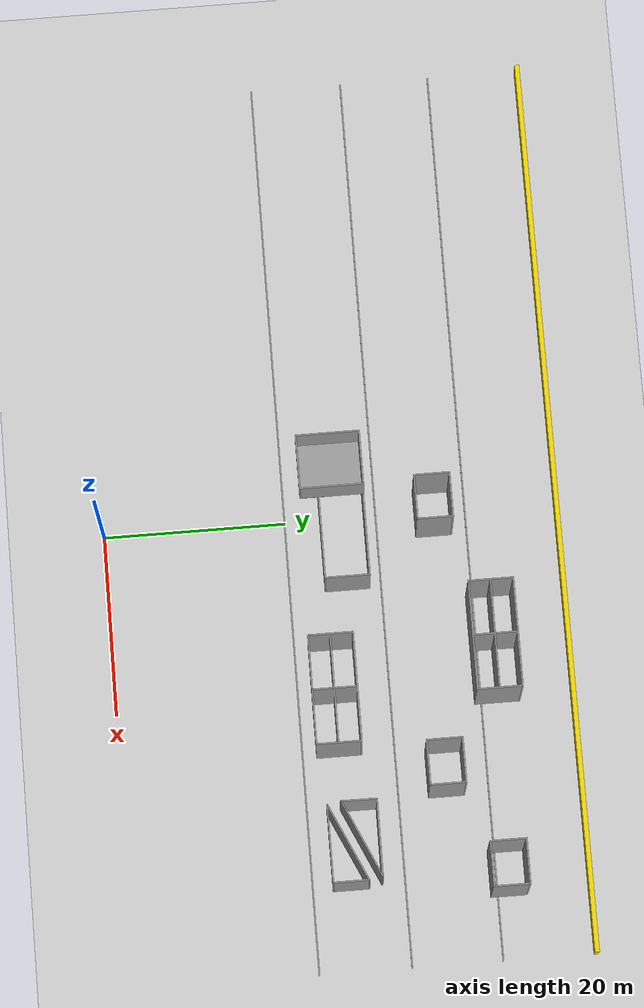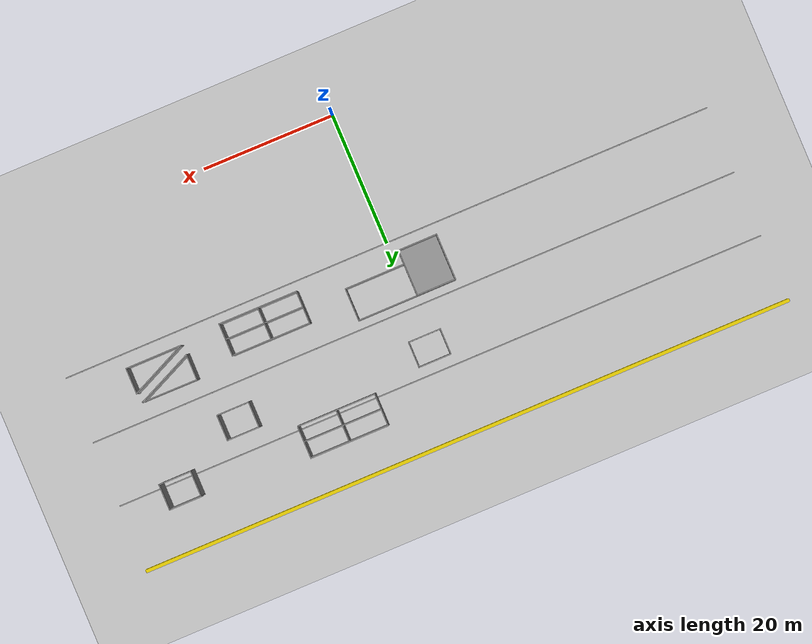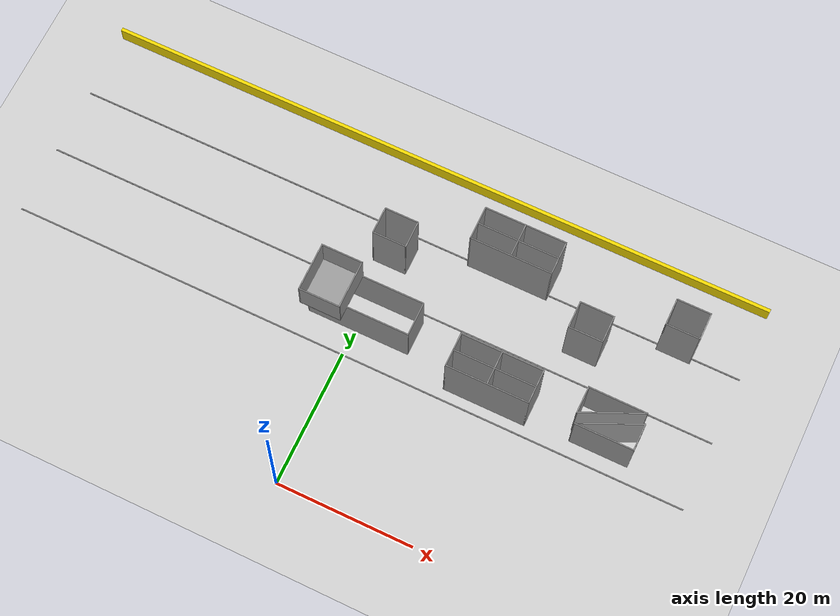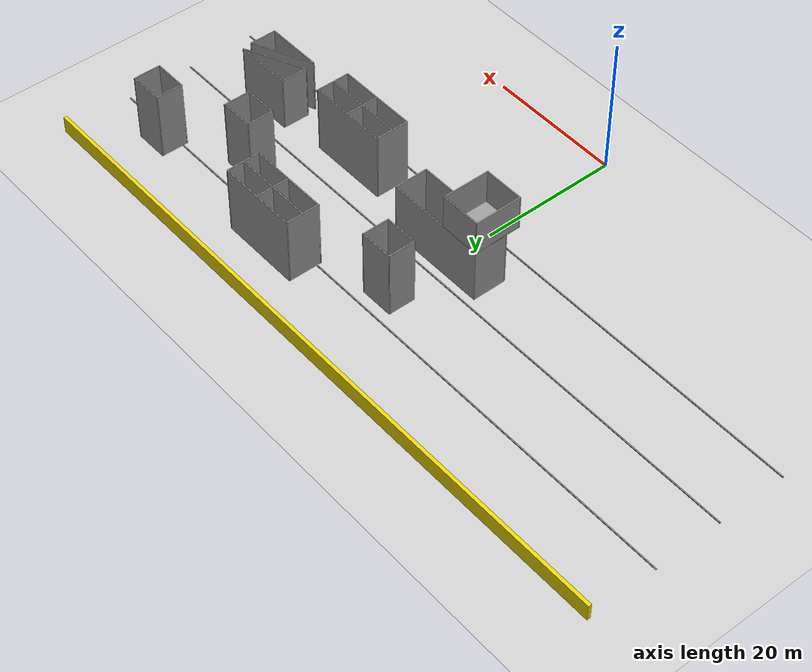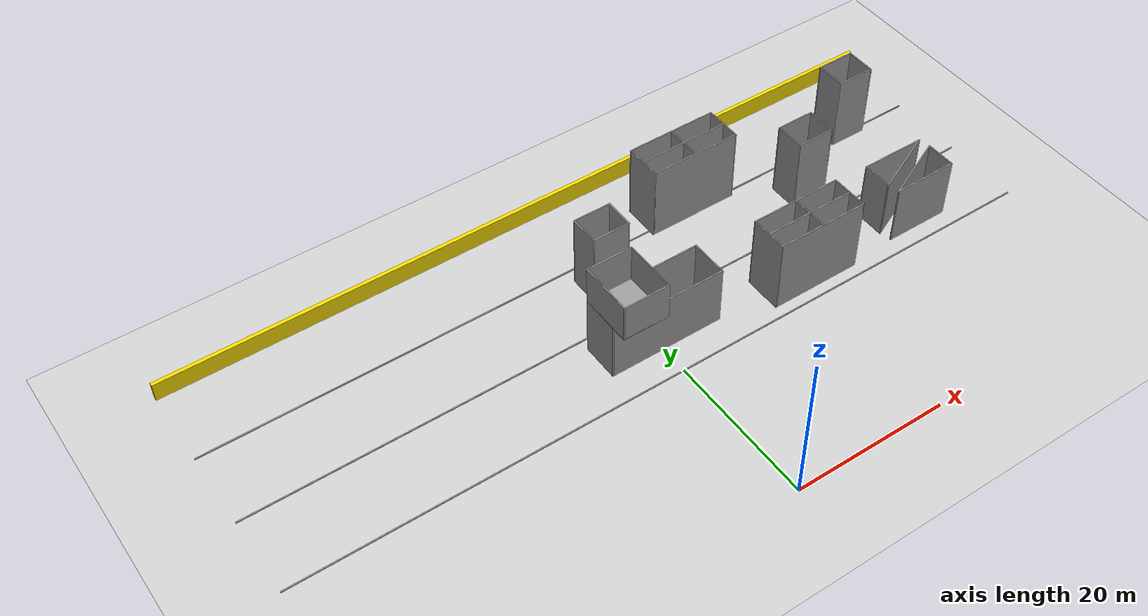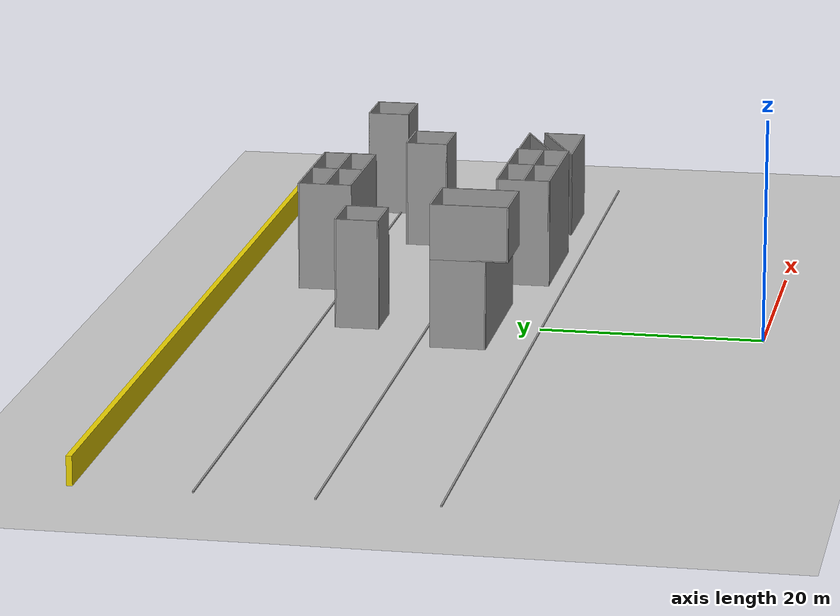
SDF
<sdf version="1.7">
 <world name="default">
  <model name="ground_plane">
   <static>1</static>
   <link name="link">
    <collision name="collision">
     <geometry><plane><normal>0 0 1</normal><size>100 100</size></plane></geometry>
     <surface><friction><ode><mu>100</mu><mu2>50</mu2></ode></friction></surface>
    </collision>
    <visual name="visual">
     <cast_shadows>0</cast_shadows>
     <geometry><plane><normal>0 0 1</normal><size>100 100</size></plane></geometry>
     <material>
      <script><uri>file://media/materials/scripts/gazebo.material</uri><name>Gazebo/Grey</name></script>
     </material>
    </visual>
   </link>
  </model>
  <model name="gridline100m_clone_0_clone_0">
   <pose>-0.012985 22.9729 0 0 -0 0</pose>
   <link name="Wall_2">
    <collision name="Wall_2_Collision">
     <geometry><box><size>100 0.15 0.15</size></box></geometry>
     <pose>0 0 0.075 0 -0 0</pose>
    </collision>
    <visual name="Wall_2_Visual">
     <pose>0 0 0.075 0 -0 0</pose>
     <geometry><box><size>100 0.15 0.15</size></box></geometry>
     <material>
      <script><uri>file://media/materials/scripts/gazebo.material</uri><name>Gazebo/Grey</name></script>
      <ambient>0 0 0 1</ambient>
     </material>
     <meta><layer>0</layer></meta>
    </visual>
    <pose>2e-06 -3.05812 0 0 -0 0</pose>
   </link>
   <static>1</static>
  </model>
  <model name="gridline100m_clone_0_clone_0_clone">
   <pose>-0.008378 33.0432 0 0 -0 0</pose>
   <link name="Wall_2">
    <collision name="Wall_2_Collision">
     <geometry><box><size>100 0.15 0.15</size></box></geometry>
     <pose>0 0 0.075 0 -0 0</pose>
    </collision>
    <visual name="Wall_2_Visual">
     <pose>0 0 0.075 0 -0 0</pose>
     <geometry><box><size>100 0.15 0.15</size></box></geometry>
     <material>
      <script><uri>file://media/materials/scripts/gazebo.material</uri><name>Gazebo/Grey</name></script>
      <ambient>0 0 0 1</ambient>
     </material>
     <meta><layer>0</layer></meta>
    </visual>
    <pose>2e-06 -3.05812 0 0 -0 0</pose>
   </link>
   <static>1</static>
  </model>
  <model name="gridline100m_clone_0_clone_0_clone_clone">
   <pose>-0.009803 42.9182 0 0 -0 0</pose>
   <link name="Wall_2">
    <collision name="Wall_2_Collision">
     <geometry><box><size>100 0.15 0.15</size></box></geometry>
     <pose>0 0 0.075 0 -0 0</pose>
    </collision>
    <visual name="Wall_2_Visual">
     <pose>0 0 0.075 0 -0 0</pose>
     <geometry><box><size>100 0.15 0.15</size></box></geometry>
     <material>
      <script><uri>file://media/materials/scripts/gazebo.material</uri><name>Gazebo/Grey</name></script>
      <ambient>0 0 0 1</ambient>
     </material>
     <meta><layer>0</layer></meta>
    </visual>
    <pose>2e-06 -3.05812 0 0 -0 0</pose>
   </link>
   <static>1</static>
  </model>
  <model name="100mfence_clone">
   <link name="Wall_0">
    <pose>-2e-06 -1.2425 0 0 -0 0</pose>
    <inertial>
     <mass>1</mass>
     <inertia><ixx>1</ixx><ixy>0</ixy><ixz>0</ixz><iyy>1</iyy><iyz>0</iyz><izz>1</izz></inertia>
    </inertial>
    <visual name="Wall_0_Visual">
     <pose>0 0 1.25 0 -0 0</pose>
     <geometry><box><size>100 0.5 2.5</size></box></geometry>
     <material>
      <script><uri>file://media/materials/scripts/gazebo.material</uri><name>Gazebo/Grey</name></script>
      <ambient>0.929 0.831 0 1</ambient>
      <shader type="pixel"><normal_map>__default__</normal_map></shader>
      <diffuse>0.7 0.7 0.7 1</diffuse>
      <specular>0.01 0.01 0.01 1</specular>
      <emissive>0 0 0 1</emissive>
     </material>
     <meta><layer>0</layer></meta>
    </visual>
    <collision name="Wall_0_Collision">
     <pose>0 0 1.25 0 -0 0</pose>
     <geometry><box><size>100 0.15 2.5</size></box></geometry>
     <surface>
      <friction>
       <ode><mu>1</mu><mu2>1</mu2><fdir1>0 0 0</fdir1><slip1>0</slip1><slip2>0</slip2></ode>
       <torsional>
        <coefficient>1</coefficient>
        <patch_radius>0</patch_radius>
        <surface_radius>0</surface_radius>
        <use_patch_radius>1</use_patch_radius>
        <ode><slip>0</slip></ode>
       </torsional>
      </friction>
      <bounce><restitution_coefficient>0</restitution_coefficient><threshold>1e+06</threshold></bounce>
      <contact>
       <collide_without_contact>0</collide_without_contact>
       <collide_without_contact_bitmask>1</collide_without_contact_bitmask>
       <collide_bitmask>1</collide_bitmask>
       <ode>
        <soft_cfm>0</soft_cfm>
        <soft_erp>0.2</soft_erp>
        <kp>1e+13</kp>
        <kd>1</kd>
        <max_vel>0.01</max_vel>
        <min_depth>0</min_depth>
       </ode>
       <bullet>
        <split_impulse>1</split_impulse>
        <split_impulse_penetration_threshold>-0.01</split_impulse_penetration_threshold>
        <soft_cfm>0</soft_cfm>
        <soft_erp>0.2</soft_erp>
        <kp>1e+13</kp>
        <kd>1</kd>
       </bullet>
      </contact>
     </surface>
    </collision>
   </link>
   <static>1</static>
   <pose>0.000191 51.1672 0 0 -0 0</pose>
  </model>
  <model name="multistory1">
   <link name="Floor_6">
    <pose>4.5 0 8 0 -0 0</pose>
    <visual name="Floor_6_Visual">
     <pose>0 0 0.05 0 -0 0</pose>
     <geometry><box><size>6 7 0.1</size></box></geometry>
     <material>
      <script><uri>file://media/materials/scripts/gazebo.material</uri><name>Gazebo/Grey</name></script>
      <ambient>0 0 0 1</ambient>
      <shader type="pixel"/>
     </material>
     <meta><layer>1</layer></meta>
    </visual>
    <collision name="Floor_6_Collision">
     <pose>0 0 0.05 0 -0 0</pose>
     <geometry><box><size>6 7 0.1</size></box></geometry>
     <surface>
      <friction>
       <ode><mu>1</mu><mu2>1</mu2><fdir1>0 0 0</fdir1><slip1>0</slip1><slip2>0</slip2></ode>
       <torsional>
        <coefficient>1</coefficient>
        <patch_radius>0</patch_radius>
        <surface_radius>0</surface_radius>
        <use_patch_radius>1</use_patch_radius>
        <ode><slip>0</slip></ode>
       </torsional>
      </friction>
      <bounce><restitution_coefficient>0</restitution_coefficient><threshold>1e+06</threshold></bounce>
      <contact>
       <collide_without_contact>0</collide_without_contact>
       <collide_without_contact_bitmask>1</collide_without_contact_bitmask>
       <collide_bitmask>1</collide_bitmask>
       <ode>
        <soft_cfm>0</soft_cfm>
        <soft_erp>0.2</soft_erp>
        <kp>1e+13</kp>
        <kd>1</kd>
        <max_vel>0.01</max_vel>
        <min_depth>0</min_depth>
       </ode>
       <bullet>
        <split_impulse>1</split_impulse>
        <split_impulse_penetration_threshold>-0.01</split_impulse_penetration_threshold>
        <soft_cfm>0</soft_cfm>
        <soft_erp>0.2</soft_erp>
        <kp>1e+13</kp>
        <kd>1</kd>
       </bullet>
      </contact>
     </surface>
    </collision>
   </link>
   <link name="Wall_1">
    <pose>0 -3.425 0 0 -0 0</pose>
    <visual name="Wall_1_Visual">
     <pose>0 0 4 0 -0 0</pose>
     <geometry><box><size>15 0.15 8</size></box></geometry>
     <material>
      <script><uri>file://media/materials/scripts/gazebo.material</uri><name>Gazebo/Grey</name></script>
      <ambient>0 0 0 1</ambient>
      <shader type="pixel"/>
     </material>
     <meta><layer>0</layer></meta>
    </visual>
    <collision name="Wall_1_Collision">
     <pose>0 0 4 0 -0 0</pose>
     <geometry><box><size>15 0.15 8</size></box></geometry>
     <surface>
      <friction>
       <ode><mu>1</mu><mu2>1</mu2><fdir1>0 0 0</fdir1><slip1>0</slip1><slip2>0</slip2></ode>
       <torsional>
        <coefficient>1</coefficient>
        <patch_radius>0</patch_radius>
        <surface_radius>0</surface_radius>
        <use_patch_radius>1</use_patch_radius>
        <ode><slip>0</slip></ode>
       </torsional>
      </friction>
      <bounce><restitution_coefficient>0</restitution_coefficient><threshold>1e+06</threshold></bounce>
      <contact>
       <collide_without_contact>0</collide_without_contact>
       <collide_without_contact_bitmask>1</collide_without_contact_bitmask>
       <collide_bitmask>1</collide_bitmask>
       <ode>
        <soft_cfm>0</soft_cfm>
        <soft_erp>0.2</soft_erp>
        <kp>1e+13</kp>
        <kd>1</kd>
        <max_vel>0.01</max_vel>
        <min_depth>0</min_depth>
       </ode>
       <bullet>
        <split_impulse>1</split_impulse>
        <split_impulse_penetration_threshold>-0.01</split_impulse_penetration_threshold>
        <soft_cfm>0</soft_cfm>
        <soft_erp>0.2</soft_erp>
        <kp>1e+13</kp>
        <kd>1</kd>
       </bullet>
      </contact>
     </surface>
    </collision>
   </link>
   <link name="Wall_2">
    <pose>7.425 -1 0 0 -0 1.5708</pose>
    <visual name="Wall_2_Visual">
     <pose>0 0 4 0 -0 0</pose>
     <geometry><box><size>5 0.15 8</size></box></geometry>
     <material>
      <script><uri>file://media/materials/scripts/gazebo.material</uri><name>Gazebo/Grey</name></script>
      <ambient>0 0 0 1</ambient>
      <shader type="pixel"/>
     </material>
     <meta><layer>0</layer></meta>
    </visual>
    <collision name="Wall_2_Collision">
     <pose>0 0 4 0 -0 0</pose>
     <geometry><box><size>5 0.15 8</size></box></geometry>
     <surface>
      <friction>
       <ode><mu>1</mu><mu2>1</mu2><fdir1>0 0 0</fdir1><slip1>0</slip1><slip2>0</slip2></ode>
       <torsional>
        <coefficient>1</coefficient>
        <patch_radius>0</patch_radius>
        <surface_radius>0</surface_radius>
        <use_patch_radius>1</use_patch_radius>
        <ode><slip>0</slip></ode>
       </torsional>
      </friction>
      <bounce><restitution_coefficient>0</restitution_coefficient><threshold>1e+06</threshold></bounce>
      <contact>
       <collide_without_contact>0</collide_without_contact>
       <collide_without_contact_bitmask>1</collide_without_contact_bitmask>
       <collide_bitmask>1</collide_bitmask>
       <ode>
        <soft_cfm>0</soft_cfm>
        <soft_erp>0.2</soft_erp>
        <kp>1e+13</kp>
        <kd>1</kd>
        <max_vel>0.01</max_vel>
        <min_depth>0</min_depth>
       </ode>
       <bullet>
        <split_impulse>1</split_impulse>
        <split_impulse_penetration_threshold>-0.01</split_impulse_penetration_threshold>
        <soft_cfm>0</soft_cfm>
        <soft_erp>0.2</soft_erp>
        <kp>1e+13</kp>
        <kd>1</kd>
       </bullet>
      </contact>
     </surface>
    </collision>
   </link>
   <link name="Wall_37">
    <pose>7.425 0 8 0 -0 1.5708</pose>
    <visual name="Wall_37_Visual">
     <pose>0 0 2.5 0 -0 0</pose>
     <geometry><box><size>7 0.15 5</size></box></geometry>
     <material>
      <script><uri>file://media/materials/scripts/gazebo.material</uri><name>Gazebo/Grey</name></script>
      <ambient>0 0 0 1</ambient>
      <shader type="pixel"/>
     </material>
     <meta><layer>1</layer></meta>
    </visual>
    <collision name="Wall_37_Collision">
     <pose>0 0 2.5 0 -0 0</pose>
     <geometry><box><size>7 0.15 5</size></box></geometry>
     <surface>
      <friction>
       <ode><mu>1</mu><mu2>1</mu2><fdir1>0 0 0</fdir1><slip1>0</slip1><slip2>0</slip2></ode>
       <torsional>
        <coefficient>1</coefficient>
        <patch_radius>0</patch_radius>
        <surface_radius>0</surface_radius>
        <use_patch_radius>1</use_patch_radius>
        <ode><slip>0</slip></ode>
       </torsional>
      </friction>
      <bounce><restitution_coefficient>0</restitution_coefficient><threshold>1e+06</threshold></bounce>
      <contact>
       <collide_without_contact>0</collide_without_contact>
       <collide_without_contact_bitmask>1</collide_without_contact_bitmask>
       <collide_bitmask>1</collide_bitmask>
       <ode>
        <soft_cfm>0</soft_cfm>
        <soft_erp>0.2</soft_erp>
        <kp>1e+13</kp>
        <kd>1</kd>
        <max_vel>0.01</max_vel>
        <min_depth>0</min_depth>
       </ode>
       <bullet>
        <split_impulse>1</split_impulse>
        <split_impulse_penetration_threshold>-0.01</split_impulse_penetration_threshold>
        <soft_cfm>0</soft_cfm>
        <soft_erp>0.2</soft_erp>
        <kp>1e+13</kp>
        <kd>1</kd>
       </bullet>
      </contact>
     </surface>
    </collision>
   </link>
   <link name="Wall_43">
    <pose>4.5 3.425 8 0 -0 3.14159</pose>
    <visual name="Wall_43_Visual">
     <pose>0 0 2.5 0 -0 0</pose>
     <geometry><box><size>6 0.15 5</size></box></geometry>
     <material>
      <script><uri>file://media/materials/scripts/gazebo.material</uri><name>Gazebo/Grey</name></script>
      <ambient>0 0 0 1</ambient>
      <shader type="pixel"/>
     </material>
     <meta><layer>1</layer></meta>
    </visual>
    <collision name="Wall_43_Collision">
     <pose>0 0 2.5 0 -0 0</pose>
     <geometry><box><size>6 0.15 5</size></box></geometry>
     <surface>
      <friction>
       <ode><mu>1</mu><mu2>1</mu2><fdir1>0 0 0</fdir1><slip1>0</slip1><slip2>0</slip2></ode>
       <torsional>
        <coefficient>1</coefficient>
        <patch_radius>0</patch_radius>
        <surface_radius>0</surface_radius>
        <use_patch_radius>1</use_patch_radius>
        <ode><slip>0</slip></ode>
       </torsional>
      </friction>
      <bounce><restitution_coefficient>0</restitution_coefficient><threshold>1e+06</threshold></bounce>
      <contact>
       <collide_without_contact>0</collide_without_contact>
       <collide_without_contact_bitmask>1</collide_without_contact_bitmask>
       <collide_bitmask>1</collide_bitmask>
       <ode>
        <soft_cfm>0</soft_cfm>
        <soft_erp>0.2</soft_erp>
        <kp>1e+13</kp>
        <kd>1</kd>
        <max_vel>0.01</max_vel>
        <min_depth>0</min_depth>
       </ode>
       <bullet>
        <split_impulse>1</split_impulse>
        <split_impulse_penetration_threshold>-0.01</split_impulse_penetration_threshold>
        <soft_cfm>0</soft_cfm>
        <soft_erp>0.2</soft_erp>
        <kp>1e+13</kp>
        <kd>1</kd>
       </bullet>
      </contact>
     </surface>
    </collision>
   </link>
   <link name="Wall_46">
    <pose>1.575 0 8 0 0 -1.5708</pose>
    <visual name="Wall_46_Visual">
     <pose>0 0 2.5 0 -0 0</pose>
     <geometry><box><size>7 0.15 5</size></box></geometry>
     <material>
      <script><uri>file://media/materials/scripts/gazebo.material</uri><name>Gazebo/Grey</name></script>
      <ambient>0 0 0 1</ambient>
      <shader type="pixel"/>
     </material>
     <meta><layer>1</layer></meta>
    </visual>
    <collision name="Wall_46_Collision">
     <pose>0 0 2.5 0 -0 0</pose>
     <geometry><box><size>7 0.15 5</size></box></geometry>
     <surface>
      <friction>
       <ode><mu>1</mu><mu2>1</mu2><fdir1>0 0 0</fdir1><slip1>0</slip1><slip2>0</slip2></ode>
       <torsional>
        <coefficient>1</coefficient>
        <patch_radius>0</patch_radius>
        <surface_radius>0</surface_radius>
        <use_patch_radius>1</use_patch_radius>
        <ode><slip>0</slip></ode>
       </torsional>
      </friction>
      <bounce><restitution_coefficient>0</restitution_coefficient><threshold>1e+06</threshold></bounce>
      <contact>
       <collide_without_contact>0</collide_without_contact>
       <collide_without_contact_bitmask>1</collide_without_contact_bitmask>
       <collide_bitmask>1</collide_bitmask>
       <ode>
        <soft_cfm>0</soft_cfm>
        <soft_erp>0.2</soft_erp>
        <kp>1e+13</kp>
        <kd>1</kd>
        <max_vel>0.01</max_vel>
        <min_depth>0</min_depth>
       </ode>
       <bullet>
        <split_impulse>1</split_impulse>
        <split_impulse_penetration_threshold>-0.01</split_impulse_penetration_threshold>
        <soft_cfm>0</soft_cfm>
        <soft_erp>0.2</soft_erp>
        <kp>1e+13</kp>
        <kd>1</kd>
       </bullet>
      </contact>
     </surface>
    </collision>
   </link>
   <link name="Wall_47">
    <pose>4.5 -3.425 8 0 -0 0</pose>
    <inertial>
     <mass>1</mass>
     <inertia><ixx>1</ixx><ixy>0</ixy><ixz>0</ixz><iyy>1</iyy><iyz>0</iyz><izz>1</izz></inertia>
    </inertial>
    <visual name="Wall_47_Visual">
     <pose>0 0 2.5 0 -0 0</pose>
     <geometry><box><size>6 0.15 5</size></box></geometry>
     <material>
      <script><uri>file://media/materials/scripts/gazebo.material</uri><name>Gazebo/Grey</name></script>
      <ambient>0 0 0 1</ambient>
      <shader type="pixel"><normal_map>__default__</normal_map></shader>
      <diffuse>0 0 0 1</diffuse>
      <specular>1 1 1 1</specular>
      <emissive>0 0 0 1</emissive>
     </material>
     <meta><layer>1</layer></meta>
    </visual>
    <collision name="Wall_47_Collision">
     <pose>0 0 2.5 0 -0 0</pose>
     <geometry><box><size>6 0.15 5</size></box></geometry>
     <surface>
      <friction>
       <ode><mu>1</mu><mu2>1</mu2><fdir1>0 0 0</fdir1><slip1>0</slip1><slip2>0</slip2></ode>
       <torsional>
        <coefficient>1</coefficient>
        <patch_radius>0</patch_radius>
        <surface_radius>0</surface_radius>
        <use_patch_radius>1</use_patch_radius>
        <ode><slip>0</slip></ode>
       </torsional>
      </friction>
      <bounce><restitution_coefficient>0</restitution_coefficient><threshold>1e+06</threshold></bounce>
      <contact>
       <collide_without_contact>0</collide_without_contact>
       <collide_without_contact_bitmask>1</collide_without_contact_bitmask>
       <collide_bitmask>1</collide_bitmask>
       <ode>
        <soft_cfm>0</soft_cfm>
        <soft_erp>0.2</soft_erp>
        <kp>1e+13</kp>
        <kd>1</kd>
        <max_vel>0.01</max_vel>
        <min_depth>0</min_depth>
       </ode>
       <bullet>
        <split_impulse>1</split_impulse>
        <split_impulse_penetration_threshold>-0.01</split_impulse_penetration_threshold>
        <soft_cfm>0</soft_cfm>
        <soft_erp>0.2</soft_erp>
        <kp>1e+13</kp>
        <kd>1</kd>
       </bullet>
      </contact>
     </surface>
    </collision>
   </link>
   <link name="Wall_5">
    <pose>0 1.425 0 0 -0 3.14159</pose>
    <visual name="Wall_5_Visual">
     <pose>0 0 4 0 -0 0</pose>
     <geometry><box><size>15 0.15 8</size></box></geometry>
     <material>
      <script><uri>file://media/materials/scripts/gazebo.material</uri><name>Gazebo/Grey</name></script>
      <ambient>0 0 0 1</ambient>
      <shader type="pixel"/>
     </material>
     <meta><layer>0</layer></meta>
    </visual>
    <collision name="Wall_5_Collision">
     <pose>0 0 4 0 -0 0</pose>
     <geometry><box><size>15 0.15 8</size></box></geometry>
     <surface>
      <friction>
       <ode><mu>1</mu><mu2>1</mu2><fdir1>0 0 0</fdir1><slip1>0</slip1><slip2>0</slip2></ode>
       <torsional>
        <coefficient>1</coefficient>
        <patch_radius>0</patch_radius>
        <surface_radius>0</surface_radius>
        <use_patch_radius>1</use_patch_radius>
        <ode><slip>0</slip></ode>
       </torsional>
      </friction>
      <bounce><restitution_coefficient>0</restitution_coefficient><threshold>1e+06</threshold></bounce>
      <contact>
       <collide_without_contact>0</collide_without_contact>
       <collide_without_contact_bitmask>1</collide_without_contact_bitmask>
       <collide_bitmask>1</collide_bitmask>
       <ode>
        <soft_cfm>0</soft_cfm>
        <soft_erp>0.2</soft_erp>
        <kp>1e+13</kp>
        <kd>1</kd>
        <max_vel>0.01</max_vel>
        <min_depth>0</min_depth>
       </ode>
       <bullet>
        <split_impulse>1</split_impulse>
        <split_impulse_penetration_threshold>-0.01</split_impulse_penetration_threshold>
        <soft_cfm>0</soft_cfm>
        <soft_erp>0.2</soft_erp>
        <kp>1e+13</kp>
        <kd>1</kd>
       </bullet>
      </contact>
     </surface>
    </collision>
   </link>
   <link name="Wall_6">
    <pose>-7.425 -1 0 0 0 -1.5708</pose>
    <visual name="Wall_6_Visual">
     <pose>0 0 4 0 -0 0</pose>
     <geometry><box><size>5 0.15 8</size></box></geometry>
     <material>
      <script><uri>file://media/materials/scripts/gazebo.material</uri><name>Gazebo/Grey</name></script>
      <ambient>0 0 0 1</ambient>
      <shader type="pixel"/>
     </material>
     <meta><layer>0</layer></meta>
    </visual>
    <collision name="Wall_6_Collision">
     <pose>0 0 4 0 -0 0</pose>
     <geometry><box><size>5 0.15 8</size></box></geometry>
     <surface>
      <friction>
       <ode><mu>1</mu><mu2>1</mu2><fdir1>0 0 0</fdir1><slip1>0</slip1><slip2>0</slip2></ode>
       <torsional>
        <coefficient>1</coefficient>
        <patch_radius>0</patch_radius>
        <surface_radius>0</surface_radius>
        <use_patch_radius>1</use_patch_radius>
        <ode><slip>0</slip></ode>
       </torsional>
      </friction>
      <bounce><restitution_coefficient>0</restitution_coefficient><threshold>1e+06</threshold></bounce>
      <contact>
       <collide_without_contact>0</collide_without_contact>
       <collide_without_contact_bitmask>1</collide_without_contact_bitmask>
       <collide_bitmask>1</collide_bitmask>
       <ode>
        <soft_cfm>0</soft_cfm>
        <soft_erp>0.2</soft_erp>
        <kp>1e+13</kp>
        <kd>1</kd>
        <max_vel>0.01</max_vel>
        <min_depth>0</min_depth>
       </ode>
       <bullet>
        <split_impulse>1</split_impulse>
        <split_impulse_penetration_threshold>-0.01</split_impulse_penetration_threshold>
        <soft_cfm>0</soft_cfm>
        <soft_erp>0.2</soft_erp>
        <kp>1e+13</kp>
        <kd>1</kd>
       </bullet>
      </contact>
     </surface>
    </collision>
   </link>
   <static>1</static>
   <pose>0.462085 25.2654 0 0 0 -3.14009</pose>
  </model>
  <model name="building1_clone_0_clone_0">
   <pose>1.33618 37.5683 0 0 -0 0</pose>
   <link name="Wall_12">
    <collision name="Wall_12_Collision">
     <geometry><box><size>5 0.15 10</size></box></geometry>
     <pose>0 0 5 0 -0 0</pose>
    </collision>
    <visual name="Wall_12_Visual">
     <pose>0 0 5 0 -0 0</pose>
     <geometry><box><size>5 0.15 10</size></box></geometry>
     <material>
      <script><uri>file://media/materials/scripts/gazebo.material</uri><name>Gazebo/Grey</name></script>
      <ambient>0 0 0 1</ambient>
     </material>
     <meta><layer>0</layer></meta>
    </visual>
    <pose>-1.19 -3.2645 0 0 -0 0</pose>
   </link>
   <link name="Wall_13">
    <collision name="Wall_13_Collision">
     <geometry><box><size>4 0.15 10</size></box></geometry>
     <pose>0 0 5 0 -0 0</pose>
    </collision>
    <visual name="Wall_13_Visual">
     <pose>0 0 5 0 -0 0</pose>
     <geometry><box><size>4 0.15 10</size></box></geometry>
     <material>
      <script><uri>file://media/materials/scripts/gazebo.material</uri><name>Gazebo/Grey</name></script>
      <ambient>0 0 0 1</ambient>
     </material>
     <meta><layer>0</layer></meta>
    </visual>
    <pose>1.235 -1.3395 0 0 -0 1.5708</pose>
   </link>
   <link name="Wall_15">
    <collision name="Wall_15_Collision">
     <geometry><box><size>5 0.15 10</size></box></geometry>
     <pose>0 0 5 0 -0 0</pose>
    </collision>
    <visual name="Wall_15_Visual">
     <pose>0 0 5 0 -0 0</pose>
     <geometry><box><size>5 0.15 10</size></box></geometry>
     <material>
      <script><uri>file://media/materials/scripts/gazebo.material</uri><name>Gazebo/Grey</name></script>
      <ambient>0 0 0 1</ambient>
     </material>
     <meta><layer>0</layer></meta>
    </visual>
    <pose>-1.19 0.5855 0 0 -0 3.14159</pose>
   </link>
   <link name="Wall_16">
    <collision name="Wall_16_Collision">
     <geometry><box><size>4 0.15 10</size></box></geometry>
     <pose>0 0 5 0 -0 0</pose>
    </collision>
    <visual name="Wall_16_Visual">
     <pose>0 0 5 0 -0 0</pose>
     <geometry><box><size>4 0.15 10</size></box></geometry>
     <material>
      <script><uri>file://media/materials/scripts/gazebo.material</uri><name>Gazebo/Grey</name></script>
      <ambient>0 0 0 1</ambient>
     </material>
     <meta><layer>0</layer></meta>
    </visual>
    <pose>-3.615 -1.3395 0 0 -0 -1.5708</pose>
   </link>
   <static>1</static>
  </model>
  <model name="building5_clone_0">
   <pose>20.3294 26.3304 0 0 -0 0</pose>
   <link name="Wall_64">
    <collision name="Wall_64_Collision">
     <geometry><box><size>12 0.15 10</size></box></geometry>
     <pose>0 0 5 0 -0 0</pose>
    </collision>
    <visual name="Wall_64_Visual">
     <pose>0 0 5 0 -0 0</pose>
     <geometry><box><size>12 0.15 10</size></box></geometry>
     <material>
      <script><uri>file://media/materials/scripts/gazebo.material</uri><name>Gazebo/Grey</name></script>
      <ambient>0.00784314 0.00784314 0.00784314 1</ambient>
     </material>
     <meta><layer>0</layer></meta>
    </visual>
    <pose>0 -4.8275 0 0 -0 0</pose>
   </link>
   <link name="Wall_65">
    <collision name="Wall_65_Collision">
     <geometry><box><size>5 0.15 10</size></box></geometry>
     <pose>0 0 5 0 -0 0</pose>
    </collision>
    <visual name="Wall_65_Visual">
     <pose>0 0 5 0 -0 0</pose>
     <geometry><box><size>5 0.15 10</size></box></geometry>
     <material>
      <script><uri>file://media/materials/scripts/gazebo.material</uri><name>Gazebo/Grey</name></script>
      <ambient>0.00784314 0.00784314 0.00784314 1</ambient>
     </material>
     <meta><layer>0</layer></meta>
    </visual>
    <pose>5.925 -2.4025 0 0 -0 1.5708</pose>
   </link>
   <link name="Wall_66">
    <collision name="Wall_66_Collision">
     <geometry><box><size>12 0.15 10</size></box></geometry>
     <pose>0 0 5 0 -0 0</pose>
    </collision>
    <visual name="Wall_66_Visual">
     <pose>0 0 5 0 -0 0</pose>
     <geometry><box><size>12 0.15 10</size></box></geometry>
     <material>
      <script><uri>file://media/materials/scripts/gazebo.material</uri><name>Gazebo/Grey</name></script>
      <ambient>0.00784314 0.00784314 0.00784314 1</ambient>
     </material>
     <meta><layer>0</layer></meta>
    </visual>
    <pose>0 0.0225 0 0 -0 3.14159</pose>
   </link>
   <link name="Wall_67">
    <collision name="Wall_67_Collision">
     <geometry><box><size>5 0.15 10</size></box></geometry>
     <pose>0 0 5 0 -0 0</pose>
    </collision>
    <visual name="Wall_67_Visual">
     <pose>0 0 5 0 -0 0</pose>
     <geometry><box><size>5 0.15 10</size></box></geometry>
     <material>
      <script><uri>file://media/materials/scripts/gazebo.material</uri><name>Gazebo/Grey</name></script>
      <ambient>0.00784314 0.00784314 0.00784314 1</ambient>
     </material>
     <meta><layer>0</layer></meta>
    </visual>
    <pose>-5.925 -2.4025 0 0 -0 -1.5708</pose>
   </link>
   <link name="Wall_69">
    <collision name="Wall_69_Collision">
     <geometry><box><size>4.9 0.15 10</size></box></geometry>
     <pose>0 0 5 0 -0 0</pose>
    </collision>
    <visual name="Wall_69_Visual">
     <pose>0 0 5 0 -0 0</pose>
     <geometry><box><size>4.9 0.15 10</size></box></geometry>
     <material>
      <script><uri>file://media/materials/scripts/gazebo.material</uri><name>Gazebo/Grey</name></script>
      <ambient>0.00784314 0.00784314 0.00784314 1</ambient>
     </material>
     <meta><layer>0</layer></meta>
    </visual>
    <pose>0 -2.3885 0 0 -0 -1.5708</pose>
   </link>
   <link name="Wall_74">
    <collision name="Wall_74_Collision">
     <geometry><box><size>11.9 0.15 10</size></box></geometry>
     <pose>0 0 5 0 -0 0</pose>
    </collision>
    <visual name="Wall_74_Visual">
     <pose>0 0 5 0 -0 0</pose>
     <geometry><box><size>11.9 0.15 10</size></box></geometry>
     <material>
      <script><uri>file://media/materials/scripts/gazebo.material</uri><name>Gazebo/Grey</name></script>
      <ambient>0.00784314 0.00784314 0.00784314 1</ambient>
     </material>
     <meta><layer>0</layer></meta>
    </visual>
    <pose>-0.024 -2.4605 0 0 -0 0</pose>
   </link>
   <static>1</static>
  </model>
  <model name="building2_clone_clone_clone">
   <pose>36.4758 23.9649 0 0 -0 3.13698</pose>
   <link name="Wall_20">
    <collision name="Wall_20_Collision">
     <geometry><box><size>4 0.15 8</size></box></geometry>
     <pose>0 0 4 0 -0 0</pose>
    </collision>
    <visual name="Wall_20_Visual">
     <pose>0 0 4 0 -0 0</pose>
     <geometry><box><size>4 0.15 8</size></box></geometry>
     <material>
      <script><uri>file://media/materials/scripts/gazebo.material</uri><name>Gazebo/Grey</name></script>
      <ambient>0.00784314 0.00784314 0.00784314 1</ambient>
     </material>
     <meta><layer>0</layer></meta>
    </visual>
    <pose>4.175 -1.60474 0 0 -0 -1.5708</pose>
   </link>
   <link name="Wall_21">
    <collision name="Wall_21_Collision">
     <geometry><box><size>8.5 0.15 8</size></box></geometry>
     <pose>0 0 4 0 -0 0</pose>
    </collision>
    <visual name="Wall_21_Visual">
     <pose>0 0 4 0 -0 0</pose>
     <geometry><box><size>8.5 0.15 8</size></box></geometry>
     <material>
      <script><uri>file://media/materials/scripts/gazebo.material</uri><name>Gazebo/Grey</name></script>
      <ambient>0.00784314 0.00784314 0.00784314 1</ambient>
     </material>
     <meta><layer>0</layer></meta>
    </visual>
    <pose>-0 -3.52974 0 0 -0 3.14159</pose>
   </link>
   <link name="Wall_24">
    <collision name="Wall_24_Collision">
     <geometry><box><size>9.34484 0.15 8</size></box></geometry>
     <pose>0 0 4 0 -0 0</pose>
    </collision>
    <visual name="Wall_24_Visual">
     <pose>0 0 4 0 -0 0</pose>
     <geometry><box><size>9.34484 0.15 8</size></box></geometry>
     <material>
      <script><uri>file://media/materials/scripts/gazebo.material</uri><name>Gazebo/Grey</name></script>
      <ambient>0.00784314 0.00784314 0.00784314 1</ambient>
     </material>
     <meta><layer>0</layer></meta>
    </visual>
    <pose>-0 -1.60474 0 0 -0 0.432028</pose>
   </link>
   <static>1</static>
  </model>
  <model name="building2_clone_0_clone">
   <pose>36.7858 25.6826 0 0 -0 0</pose>
   <link name="Wall_20">
    <collision name="Wall_20_Collision">
     <geometry><box><size>4 0.15 8</size></box></geometry>
     <pose>0 0 4 0 -0 0</pose>
    </collision>
    <visual name="Wall_20_Visual">
     <pose>0 0 4 0 -0 0</pose>
     <geometry><box><size>4 0.15 8</size></box></geometry>
     <material>
      <script><uri>file://media/materials/scripts/gazebo.material</uri><name>Gazebo/Grey</name></script>
      <ambient>0.00784314 0.00784314 0.00784314 1</ambient>
     </material>
     <meta><layer>0</layer></meta>
    </visual>
    <pose>4.175 -1.60474 0 0 -0 -1.5708</pose>
   </link>
   <link name="Wall_21">
    <collision name="Wall_21_Collision">
     <geometry><box><size>8.5 0.15 8</size></box></geometry>
     <pose>0 0 4 0 -0 0</pose>
    </collision>
    <visual name="Wall_21_Visual">
     <pose>0 0 4 0 -0 0</pose>
     <geometry><box><size>8.5 0.15 8</size></box></geometry>
     <material>
      <script><uri>file://media/materials/scripts/gazebo.material</uri><name>Gazebo/Grey</name></script>
      <ambient>0.00784314 0.00784314 0.00784314 1</ambient>
     </material>
     <meta><layer>0</layer></meta>
    </visual>
    <pose>-0 -3.52974 0 0 -0 3.14159</pose>
   </link>
   <link name="Wall_24">
    <collision name="Wall_24_Collision">
     <geometry><box><size>9.34484 0.15 8</size></box></geometry>
     <pose>0 0 4 0 -0 0</pose>
    </collision>
    <visual name="Wall_24_Visual">
     <pose>0 0 4 0 -0 0</pose>
     <geometry><box><size>9.34484 0.15 8</size></box></geometry>
     <material>
      <script><uri>file://media/materials/scripts/gazebo.material</uri><name>Gazebo/Grey</name></script>
      <ambient>0.00784314 0.00784314 0.00784314 1</ambient>
     </material>
     <meta><layer>0</layer></meta>
    </visual>
    <pose>-0 -1.60474 0 0 -0 0.432028</pose>
   </link>
   <static>1</static>
  </model>
  <model name="building1_clone_clone">
   <pose>30.329 36.5581 0 0 -0 0</pose>
   <link name="Wall_12">
    <collision name="Wall_12_Collision">
     <geometry><box><size>5 0.15 10</size></box></geometry>
     <pose>0 0 5 0 -0 0</pose>
    </collision>
    <visual name="Wall_12_Visual">
     <pose>0 0 5 0 -0 0</pose>
     <geometry><box><size>5 0.15 10</size></box></geometry>
     <material>
      <script><uri>file://media/materials/scripts/gazebo.material</uri><name>Gazebo/Grey</name></script>
      <ambient>0 0 0 1</ambient>
     </material>
     <meta><layer>0</layer></meta>
    </visual>
    <pose>-1.19 -3.2645 0 0 -0 0</pose>
   </link>
   <link name="Wall_13">
    <collision name="Wall_13_Collision">
     <geometry><box><size>4 0.15 10</size></box></geometry>
     <pose>0 0 5 0 -0 0</pose>
    </collision>
    <visual name="Wall_13_Visual">
     <pose>0 0 5 0 -0 0</pose>
     <geometry><box><size>4 0.15 10</size></box></geometry>
     <material>
      <script><uri>file://media/materials/scripts/gazebo.material</uri><name>Gazebo/Grey</name></script>
      <ambient>0 0 0 1</ambient>
     </material>
     <meta><layer>0</layer></meta>
    </visual>
    <pose>1.235 -1.3395 0 0 -0 1.5708</pose>
   </link>
   <link name="Wall_15">
    <collision name="Wall_15_Collision">
     <geometry><box><size>5 0.15 10</size></box></geometry>
     <pose>0 0 5 0 -0 0</pose>
    </collision>
    <visual name="Wall_15_Visual">
     <pose>0 0 5 0 -0 0</pose>
     <geometry><box><size>5 0.15 10</size></box></geometry>
     <material>
      <script><uri>file://media/materials/scripts/gazebo.material</uri><name>Gazebo/Grey</name></script>
      <ambient>0 0 0 1</ambient>
     </material>
     <meta><layer>0</layer></meta>
    </visual>
    <pose>-1.19 0.5855 0 0 -0 3.14159</pose>
   </link>
   <link name="Wall_16">
    <collision name="Wall_16_Collision">
     <geometry><box><size>4 0.15 10</size></box></geometry>
     <pose>0 0 5 0 -0 0</pose>
    </collision>
    <visual name="Wall_16_Visual">
     <pose>0 0 5 0 -0 0</pose>
     <geometry><box><size>4 0.15 10</size></box></geometry>
     <material>
      <script><uri>file://media/materials/scripts/gazebo.material</uri><name>Gazebo/Grey</name></script>
      <ambient>0 0 0 1</ambient>
     </material>
     <meta><layer>0</layer></meta>
    </visual>
    <pose>-3.615 -1.3395 0 0 -0 -1.5708</pose>
   </link>
   <static>1</static>
  </model>
  <model name="building1_clone_0_clone_clone">
   <pose>41.6901 42.423 0 0 -0 0</pose>
   <link name="Wall_12">
    <collision name="Wall_12_Collision">
     <geometry><box><size>5 0.15 10</size></box></geometry>
     <pose>0 0 5 0 -0 0</pose>
    </collision>
    <visual name="Wall_12_Visual">
     <pose>0 0 5 0 -0 0</pose>
     <geometry><box><size>5 0.15 10</size></box></geometry>
     <material>
      <script><uri>file://media/materials/scripts/gazebo.material</uri><name>Gazebo/Grey</name></script>
      <ambient>0 0 0 1</ambient>
     </material>
     <meta><layer>0</layer></meta>
    </visual>
    <pose>-1.19 -3.2645 0 0 -0 0</pose>
   </link>
   <link name="Wall_13">
    <collision name="Wall_13_Collision">
     <geometry><box><size>4 0.15 10</size></box></geometry>
     <pose>0 0 5 0 -0 0</pose>
    </collision>
    <visual name="Wall_13_Visual">
     <pose>0 0 5 0 -0 0</pose>
     <geometry><box><size>4 0.15 10</size></box></geometry>
     <material>
      <script><uri>file://media/materials/scripts/gazebo.material</uri><name>Gazebo/Grey</name></script>
      <ambient>0 0 0 1</ambient>
     </material>
     <meta><layer>0</layer></meta>
    </visual>
    <pose>1.235 -1.3395 0 0 -0 1.5708</pose>
   </link>
   <link name="Wall_15">
    <collision name="Wall_15_Collision">
     <geometry><box><size>5 0.15 10</size></box></geometry>
     <pose>0 0 5 0 -0 0</pose>
    </collision>
    <visual name="Wall_15_Visual">
     <pose>0 0 5 0 -0 0</pose>
     <geometry><box><size>5 0.15 10</size></box></geometry>
     <material>
      <script><uri>file://media/materials/scripts/gazebo.material</uri><name>Gazebo/Grey</name></script>
      <ambient>0 0 0 1</ambient>
     </material>
     <meta><layer>0</layer></meta>
    </visual>
    <pose>-1.19 0.5855 0 0 -0 3.14159</pose>
   </link>
   <link name="Wall_16">
    <collision name="Wall_16_Collision">
     <geometry><box><size>4 0.15 10</size></box></geometry>
     <pose>0 0 5 0 -0 0</pose>
    </collision>
    <visual name="Wall_16_Visual">
     <pose>0 0 5 0 -0 0</pose>
     <geometry><box><size>4 0.15 10</size></box></geometry>
     <material>
      <script><uri>file://media/materials/scripts/gazebo.material</uri><name>Gazebo/Grey</name></script>
      <ambient>0 0 0 1</ambient>
     </material>
     <meta><layer>0</layer></meta>
    </visual>
    <pose>-3.615 -1.3395 0 0 -0 -1.5708</pose>
   </link>
   <static>1</static>
  </model>
  <model name="building5_clone_clone_0">
   <pose>15.7386 44.0215 0 0 -0 0</pose>
   <link name="Wall_64">
    <collision name="Wall_64_Collision">
     <geometry><box><size>12 0.15 10</size></box></geometry>
     <pose>0 0 5 0 -0 0</pose>
    </collision>
    <visual name="Wall_64_Visual">
     <pose>0 0 5 0 -0 0</pose>
     <geometry><box><size>12 0.15 10</size></box></geometry>
     <material>
      <script><uri>file://media/materials/scripts/gazebo.material</uri><name>Gazebo/Grey</name></script>
      <ambient>0.00784314 0.00784314 0.00784314 1</ambient>
     </material>
     <meta><layer>0</layer></meta>
    </visual>
    <pose>0 -4.8275 0 0 -0 0</pose>
   </link>
   <link name="Wall_65">
    <collision name="Wall_65_Collision">
     <geometry><box><size>5 0.15 10</size></box></geometry>
     <pose>0 0 5 0 -0 0</pose>
    </collision>
    <visual name="Wall_65_Visual">
     <pose>0 0 5 0 -0 0</pose>
     <geometry><box><size>5 0.15 10</size></box></geometry>
     <material>
      <script><uri>file://media/materials/scripts/gazebo.material</uri><name>Gazebo/Grey</name></script>
      <ambient>0.00784314 0.00784314 0.00784314 1</ambient>
     </material>
     <meta><layer>0</layer></meta>
    </visual>
    <pose>5.925 -2.4025 0 0 -0 1.5708</pose>
   </link>
   <link name="Wall_66">
    <collision name="Wall_66_Collision">
     <geometry><box><size>12 0.15 10</size></box></geometry>
     <pose>0 0 5 0 -0 0</pose>
    </collision>
    <visual name="Wall_66_Visual">
     <pose>0 0 5 0 -0 0</pose>
     <geometry><box><size>12 0.15 10</size></box></geometry>
     <material>
      <script><uri>file://media/materials/scripts/gazebo.material</uri><name>Gazebo/Grey</name></script>
      <ambient>0.00784314 0.00784314 0.00784314 1</ambient>
     </material>
     <meta><layer>0</layer></meta>
    </visual>
    <pose>0 0.0225 0 0 -0 3.14159</pose>
   </link>
   <link name="Wall_67">
    <collision name="Wall_67_Collision">
     <geometry><box><size>5 0.15 10</size></box></geometry>
     <pose>0 0 5 0 -0 0</pose>
    </collision>
    <visual name="Wall_67_Visual">
     <pose>0 0 5 0 -0 0</pose>
     <geometry><box><size>5 0.15 10</size></box></geometry>
     <material>
      <script><uri>file://media/materials/scripts/gazebo.material</uri><name>Gazebo/Grey</name></script>
      <ambient>0.00784314 0.00784314 0.00784314 1</ambient>
     </material>
     <meta><layer>0</layer></meta>
    </visual>
    <pose>-5.925 -2.4025 0 0 -0 -1.5708</pose>
   </link>
   <link name="Wall_69">
    <collision name="Wall_69_Collision">
     <geometry><box><size>4.9 0.15 10</size></box></geometry>
     <pose>0 0 5 0 -0 0</pose>
    </collision>
    <visual name="Wall_69_Visual">
     <pose>0 0 5 0 -0 0</pose>
     <geometry><box><size>4.9 0.15 10</size></box></geometry>
     <material>
      <script><uri>file://media/materials/scripts/gazebo.material</uri><name>Gazebo/Grey</name></script>
      <ambient>0.00784314 0.00784314 0.00784314 1</ambient>
     </material>
     <meta><layer>0</layer></meta>
    </visual>
    <pose>0 -2.3885 0 0 -0 -1.5708</pose>
   </link>
   <link name="Wall_74">
    <collision name="Wall_74_Collision">
     <geometry><box><size>11.9 0.15 10</size></box></geometry>
     <pose>0 0 5 0 -0 0</pose>
    </collision>
    <visual name="Wall_74_Visual">
     <pose>0 0 5 0 -0 0</pose>
     <geometry><box><size>11.9 0.15 10</size></box></geometry>
     <material>
      <script><uri>file://media/materials/scripts/gazebo.material</uri><name>Gazebo/Grey</name></script>
      <ambient>0.00784314 0.00784314 0.00784314 1</ambient>
     </material>
     <meta><layer>0</layer></meta>
    </visual>
    <pose>-0.024 -2.4605 0 0 -0 0</pose>
   </link>
   <static>1</static>
  </model>
 </world>
</sdf>
